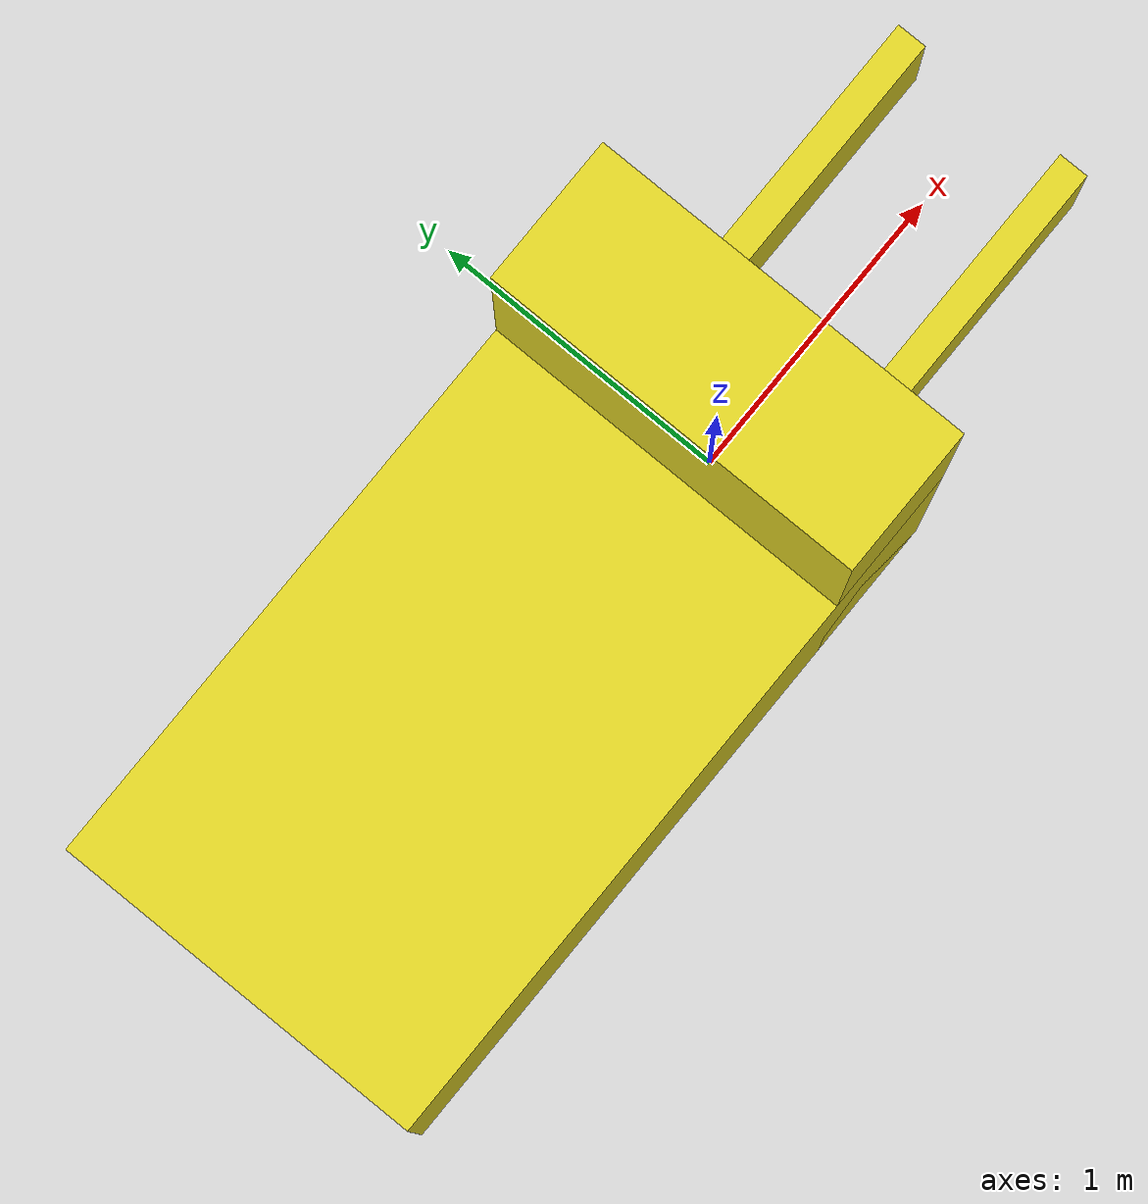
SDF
<?xml version='1.0'?>
<sdf version='1.7'>
  <model name='forklift'>
    <pose>0.0 0.0 0.0 0.0 0.0 0.0</pose>

    <link name='link_0'>
      <inertial>
        <mass>1</mass>
        <inertia>
          <ixx>0.166667</ixx>
          <ixy>0</ixy>
          <ixz>0</ixz>
          <iyy>0.166667</iyy>
          <iyz>0</iyz>
          <izz>0.166667</izz>
        </inertia>
        <pose>0 0 0 0 -0 0</pose>
      </inertial>

      <gravity>0</gravity>
      <kinematic>1</kinematic>
      <visual name='visual'>
        <pose>-0.9185 0 0.6375 0 -0 0</pose>
        <geometry>
          <box>
            <size>2.295 1.2 1.275</size>
          </box>
        </geometry>
        <material>
          <script>
            <uri>file://media/materials/scripts/gazebo.material</uri>
            <name>Gazebo/Yellow</name>
          </script>
        </material>
      </visual>

      <collision name='collision'>
        <pose>-0.9185 0 0.6375 0 -0 0</pose>
        <geometry>
          <box>
            <size>2.295 1.2 1.275</size>
          </box>
        </geometry>
      </collision>
    </link>

    <link name='link_1'>
      <inertial>
        <mass>1</mass>
        <inertia>
          <ixx>0.166667</ixx>
          <ixy>0</ixy>
          <ixz>0</ixz>
          <iyy>0.166667</iyy>
          <iyz>0</iyz>
          <izz>0.166667</izz>
        </inertia>
        <pose>0 0 0 0 -0 0</pose>
      </inertial>

      <visual name='visual'>
        <pose>0 0 1.081 0 -0 0</pose>
        <geometry>
          <box>
            <size>0.458 1.2 2.162</size>
          </box>
        </geometry>
        <material>
          <script>
            <uri>file://media/materials/scripts/gazebo.material</uri>
            <name>Gazebo/Yellow</name>
          </script>
        </material>
      </visual>

      <collision name='collision'>
        <pose>0 0 1.081 0 -0 0</pose>
        <geometry>
          <box>
            <size>0.458 1.2 2.162</size>
          </box>
        </geometry>
      </collision>
    </link>

    <link name='link_2'>
      <inertial>
        <mass>1</mass>
        <inertia>
          <ixx>0.166667</ixx>
          <ixy>0</ixy>
          <ixz>0</ixz>
          <iyy>0.166667</iyy>
          <iyz>0</iyz>
          <izz>0.166667</izz>
        </inertia>
        <pose>0 0 0 0 -0 0</pose>
      </inertial>

      <visual name='visual'>
        <pose>0.754 0.3 0.25 0 -0 0</pose>
        <geometry>
          <box>
            <size>1.05 0.1 0.5</size>
          </box>
        </geometry>
        <material>
          <script>
            <uri>file://media/materials/scripts/gazebo.material</uri>
            <name>Gazebo/Yellow</name>
          </script>
        </material>
      </visual>

      <collision name='collision'>
        <pose>0.754 0.3 0.25 0 -0 0</pose>
        <geometry>
          <box>
            <size>1.05 0.1 0.5</size>
          </box>
        </geometry>
      </collision>
    </link>

    <link name='link_2_clone'>
      <inertial>
        <mass>1</mass>
        <inertia>
          <ixx>0.166667</ixx>
          <ixy>0</ixy>
          <ixz>0</ixz>
          <iyy>0.166667</iyy>
          <iyz>0</iyz>
          <izz>0.166667</izz>
        </inertia>
        <pose>0 0 0 0 -0 0</pose>
      </inertial>

      <visual name='visual'>
        <pose>0.754 -0.3 0.25 0 -0 0</pose>
        <geometry>
          <box>
            <size>1.05 0.1 0.5</size>
          </box>
        </geometry>
        <material>
          <script>
            <uri>file://media/materials/scripts/gazebo.material</uri>
            <name>Gazebo/Yellow</name>
          </script>
        </material>
      </visual>
      <collision name='collision'>
        <pose>0.754 -0.3 0.25 0 -0 0</pose>
        <geometry>
          <box>
            <size>1.05 0.1 0.5</size>
          </box>
        </geometry>
      </collision>
    </link>

    <joint name='joint_0' type='fixed'>
      <parent>link_0</parent>
      <child>link_1</child>
      <pose>0 0 0 0 0 0</pose>
    </joint>

    <joint name='joint_1' type='fixed'>
      <parent>link_1</parent>
      <child>link_2</child>
      <pose>0 0 0 0 0 0</pose>
    </joint>
    <joint name='joint_2' type='fixed'>
      <parent>link_1</parent>
      <child>link_2_clone</child>
      <pose>0 0 0 0 0 0</pose>
    </joint>

    <static>0</static>
    <allow_auto_disable>1</allow_auto_disable>
  </model>
</sdf>
